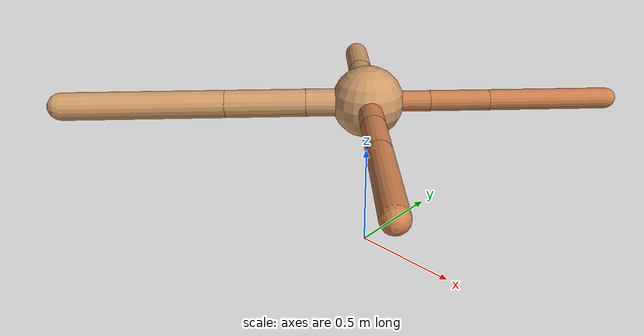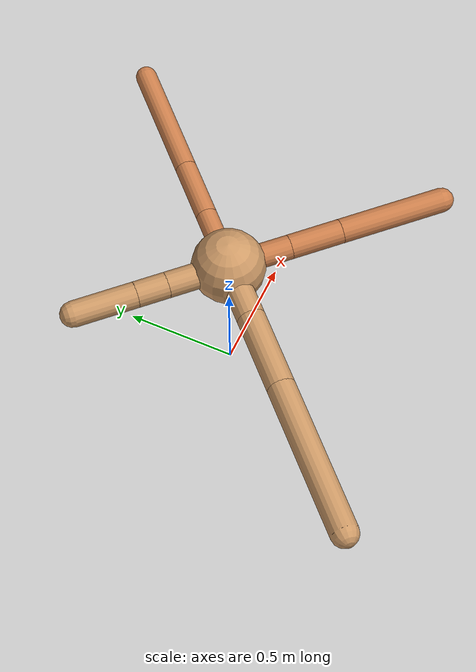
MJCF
<?xml version="1.0" ?>
<mujoco model="ant">

	<compiler angle="degree" coordinate="local" inertiafromgeom="true"/>

	<option integrator="RK4" timestep="0.01"/>

	<custom>

		<numeric data="0.0 0.0 0.55 1.0 0.0 0.0 0.0 0.0 1.0 0.0 -1.0 0.0 -1.0 0.0 1.0" name="init_qpos"/>

	</custom>

	<default>

		<joint armature="1" damping="1" limited="true"/>

		<geom conaffinity="0" condim="3" density="5.0" friction="1.5 0.1 0.1" margin="0.01" rgba="0.8 0.6 0.4 1"/>

	</default>

	<worldbody>

		<body name="torso" pos="0 0 0.75">

			<geom name="torso_geom" pos="0 0 0" size="0.16482654048989145" type="sphere"/>

			<!--joint armature="0" damping="0" limited="false" margin="0.01" name="root" pos="0 0 0" type="free"/-->

			<body name="front_left_leg" pos="0 0 0">

				<geom fromto="0 0 0 0.2 0.2 0" name="aux_1_geom" size="0.047268111653948716" type="capsule" rgba=".8 .5 .3 1"/>

				<body name="aux_1" pos="0.2 0.2 0">

					<joint axis="0 0 1" name="hip_1" pos="0.0 0.0 0.0" range="-40 40" type="hinge"/>

					<geom fromto="0 0 0 0.1924970342055668 0.1924970342055668 0" name="left_leg_geom" size="0.047268111653948716" type="capsule" rgba=".8 .5 .3 1"/>

					<body pos="0.1924970342055668 0.1924970342055668 0" name="front_left_foot">

						<joint axis="-1 1 0" name="ankle_1" pos="0.0 0.0 0.0" range="30 100" type="hinge"/>

						<geom fromto="0 0 0 0.3849940684111336 0.3849940684111336 0" name="left_ankle_geom" size="0.047268111653948716" type="capsule" rgba=".8 .5 .3 1"/>

					</body>

				</body>

			</body>

			<body name="front_right_leg" pos="0 0 0">

				<geom fromto="0 0 0 -0.2 0.2 0" name="aux_2_geom" size="0.05820838808255536" type="capsule"/>

				<body name="aux_2" pos="-0.2 0.2 0">

					<joint axis="0 0 1" name="hip_2" pos="0.0 0.0 0.0" range="-40 40" type="hinge"/>

					<geom fromto="0 0 0 -0.10048183969218474 0.10048183969218474 0" name="right_leg_geom" size="0.05820838808255536" type="capsule"/>

					<body pos="-0.10048183969218474 0.10048183969218474 0" name="front_right_foot">

						<joint axis="1 1 0" name="ankle_2" pos="0.0 0.0 0.0" range="-100 -30" type="hinge"/>

						<geom fromto="0 0 0 -0.2009636793843695 0.2009636793843695 0" name="right_ankle_geom" size="0.05820838808255536" type="capsule"/>

					</body>

				</body>

			</body>

			<body name="left_back_leg" pos="0 0 0">

				<geom fromto="0 0 0 -0.2 -0.2 0" name="aux_3_geom" size="0.06299981838099336" type="capsule"/>

				<body name="aux_3" pos="-0.2 -0.2 0">

					<joint axis="0 0 1" name="hip_3" pos="0.0 0.0 0.0" range="-40 40" type="hinge"/>

					<geom fromto="0 0 0 -0.2580571420209628 -0.2580571420209628 0" name="back_leg_geom" size="0.06299981838099336" type="capsule"/>

					<body pos="-0.2580571420209628 -0.2580571420209628 0" name="left_back_foot">

						<joint axis="-1 1 0" name="ankle_3" pos="0.0 0.0 0.0" range="-100 -30" type="hinge"/>

						<geom fromto="0 0 0 -0.5161142840419256 -0.5161142840419256 0" name="third_ankle_geom" size="0.06299981838099336" type="capsule"/>

					</body>

				</body>

			</body>

			<body name="right_back_leg" pos="0 0 0">

				<geom fromto="0 0 0 0.2 -0.2 0" name="aux_4_geom" size="0.054601420542312554" type="capsule" rgba=".8 .5 .3 1"/>

				<body name="aux_4" pos="0.2 -0.2 0">

					<joint axis="0 0 1" name="hip_4" pos="0.0 0.0 0.0" range="-40 40" type="hinge"/>

					<geom fromto="0 0 0 0.1688201625539063 -0.1688201625539063 0" name="rightback_leg_geom" size="0.054601420542312554" type="capsule" rgba=".8 .5 .3 1"/>

					<body pos="0.1688201625539063 -0.1688201625539063 0" name="right_back_foot">

						<joint axis="1 1 0" name="ankle_4" pos="0.0 0.0 0.0" range="30 100" type="hinge"/>

						<geom fromto="0 0 0 0.3376403251078126 -0.3376403251078126 0" name="fourth_ankle_geom" size="0.054601420542312554" type="capsule" rgba=".8 .5 .3 1"/>

					</body>

				</body>

			</body>

		</body>

	</worldbody>

	<actuator>

		<motor ctrllimited="true" ctrlrange="-1.0 1.0" joint="hip_4" gear="150"/>

		<motor ctrllimited="true" ctrlrange="-1.0 1.0" joint="ankle_4" gear="150"/>

		<motor ctrllimited="true" ctrlrange="-1.0 1.0" joint="hip_1" gear="150"/>

		<motor ctrllimited="true" ctrlrange="-1.0 1.0" joint="ankle_1" gear="150"/>

		<motor ctrllimited="true" ctrlrange="-1.0 1.0" joint="hip_2" gear="150"/>

		<motor ctrllimited="true" ctrlrange="-1.0 1.0" joint="ankle_2" gear="150"/>

		<motor ctrllimited="true" ctrlrange="-1.0 1.0" joint="hip_3" gear="150"/>

		<motor ctrllimited="true" ctrlrange="-1.0 1.0" joint="ankle_3" gear="150"/>

	</actuator>

</mujoco>
